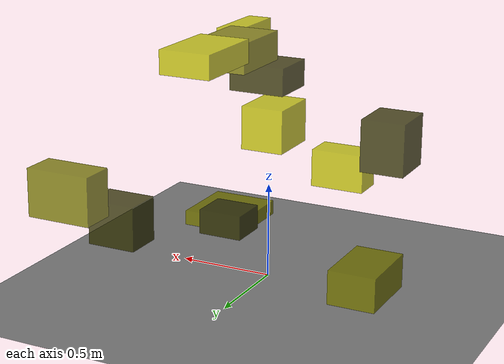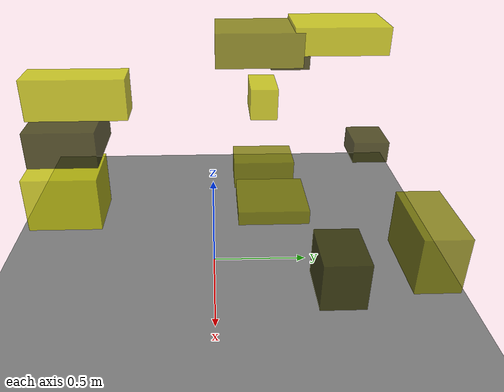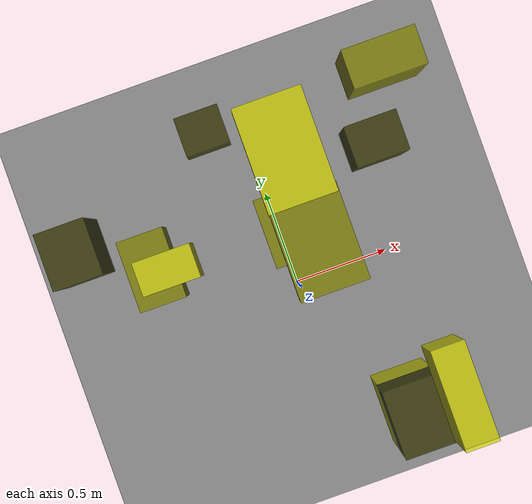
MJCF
<?xml version="1.0"?>
<mujoco model="obstacle_scene">
  <compiler angle="radian" coordinate="local"/>
  <option timestep="0.001" gravity="0 0 -9.81"/>

  <asset>
    <material name="obstacle_mat" rgba="0.8 0.8 0.0 0.8"/>
    <material name="ground_mat" rgba="0.5 0.5 0.5 1"/>
  </asset>

  <worldbody>
    <!-- Ground plane -->
    <geom name="ground" type="plane" size="3 3 0.1" material="ground_mat"/>

    <!-- Obstacles -->
    <body name="obstacle_0" pos="0.307068 -0.606123 0.923772">
      <geom name="obs_0" type="box" size="0.162103 0.142827 0.077465" rgba="0.2 0.2 0.0 0.8"/>
    </body>
    <body name="obstacle_1" pos="0.671260 0.847623 0.607513">
      <geom name="obs_1" type="box" size="0.170615 0.091039 0.123683" rgba="0.5 0.5 0.0 0.8"/>
    </body>
    <body name="obstacle_2" pos="0.285173 -0.653063 0.629747">
      <geom name="obs_2" type="box" size="0.124690 0.159677 0.124410" rgba="0.8 0.8 0.0 0.8"/>
    </body>
    <body name="obstacle_3" pos="-0.190924 0.823515 0.608585">
      <geom name="obs_3" type="box" size="0.102477 0.090406 0.055841" rgba="0.2 0.2 0.0 0.8"/>
    </body>
    <body name="obstacle_4" pos="0.077438 0.291066 0.429311">
      <geom name="obs_4" type="box" size="0.158669 0.171154 0.035618" rgba="0.5 0.5 0.0 0.8"/>
    </body>
    <body name="obstacle_5" pos="0.411548 -0.521714 1.139054">
      <geom name="obs_5" type="box" size="0.066664 0.197768 0.082776" rgba="0.8 0.8 0.0 0.8"/>
    </body>
    <body name="obstacle_6" pos="0.564652 0.541254 0.385249">
      <geom name="obs_6" type="box" size="0.129797 0.101029 0.116107" rgba="0.2 0.2 0.0 0.8"/>
    </body>
    <body name="obstacle_7" pos="0.084904 0.201552 1.246249">
      <geom name="obs_7" type="box" size="0.130710 0.186003 0.074508" rgba="0.5 0.5 0.0 0.8"/>
    </body>
    <body name="obstacle_8" pos="-0.525264 0.290000 0.755947">
      <geom name="obs_8" type="box" size="0.128532 0.075677 0.089661" rgba="0.8 0.8 0.0 0.8"/>
    </body>
    <body name="obstacle_9" pos="-0.828814 0.473231 0.969475">
      <geom name="obs_9" type="box" size="0.102308 0.116929 0.121078" rgba="0.2 0.2 0.0 0.8"/>
    </body>
    <body name="obstacle_10" pos="-0.669050 0.317662 0.222121">
      <geom name="obs_10" type="box" size="0.120356 0.184238 0.085871" rgba="0.5 0.5 0.0 0.8"/>
    </body>
    <body name="obstacle_11" pos="0.080507 0.547035 1.281021">
      <geom name="obs_11" type="box" size="0.130471 0.199769 0.059281" rgba="0.8 0.8 0.0 0.8"/>
    </body>
  </worldbody>
</mujoco>
